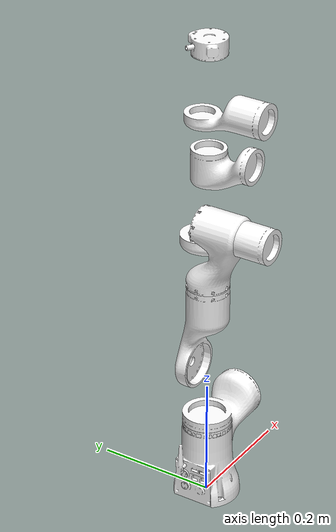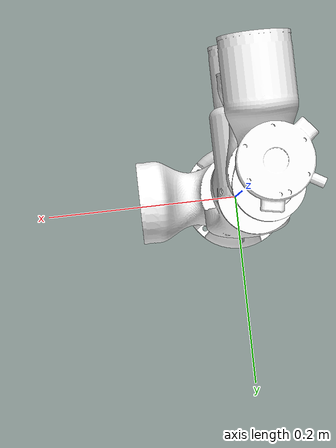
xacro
<robot name="rm_75" xmlns:xacro="http://www.ros.org/wiki/xacro">
<xacro:include filename="$(find rm_75_description)/urdf/rm_75.transmission.xacro"/>
<xacro:include filename="$(find rm_75_description)/urdf/rm_75.gazebo.xacro"/>
<!-- Inertial matrix -->
<xacro:macro name="inertial_matrix" params="mass">
<inertial>
    <mass value="${mass}" />
    <inertia ixx="1.0" ixy="0.0" ixz="0.0" iyy="0.5" iyz="0.0" izz="1.0" />
</inertial>
</xacro:macro>
 <xacro:macro name="Box_inertial_matrix" params="m l w h">
       <inertial>
               <mass value="${m}" />
               <inertia ixx="${m*(h*h + l*l)/12}" ixy = "0" ixz = "0"
                   iyy="${m*(w*w + l*l)/12}" iyz= "0"
                   izz="${m*(w*w + h*h)/12}" />
       </inertial>
  </xacro:macro>

  <link
    name="base_link">
    <inertial>
      <origin
        xyz="-0.00036413 0.00018052 0.052375"
        rpy="0 0 0" />
      <mass
        value="0.31318" />
      <inertia
        ixx="0.00073728"
        ixy="1.5275E-06"
        ixz="1.7514E-05"
        iyy="0.00072364"
        iyz="8.0836E-07"
        izz="0.00048703" />
    </inertial>
    <visual>
      <origin
        xyz="0 0 0"
        rpy="0 0 0" />
      <geometry>
        <mesh
          filename="package://rm_75_description/meshes/base_link.STL" />
      </geometry>
      <material
        name="">
        <color
          rgba="1 1 1 1" />
      </material>
    </visual>
    <collision>
      <origin
        xyz="0 0 0"
        rpy="0 0 0" />
      <geometry>
        <mesh
          filename="package://rm_75_description/meshes/base_link.STL" />
      </geometry>
    </collision>
  </link>
  <link
    name="Link1">
    <inertial>
      <origin
        xyz="-1.7986E-05 -0.0216 0.071926"
        rpy="0 0 0" />
      <mass
        value="0.20084" />
      <inertia
        ixx="0.00053114"
        ixy="-4.3278E-07"
        ixz="1.0479E-06"
        iyy="0.00049744"
        iyz="0.00010625"
        izz="0.0002821" />
    </inertial>
    <visual>
      <origin
        xyz="0 0 0"
        rpy="0 0 0" />
      <geometry>
        <mesh
          filename="package://rm_75_description/meshes/Link1.STL" />
      </geometry>
      <material
        name="">
        <color
          rgba="1 1 1 1" />
      </material>
    </visual>
    <collision>
      <origin
        xyz="0 0 0"
        rpy="0 0 0" />
      <geometry>
        <mesh
          filename="package://rm_75_description/meshes/Link1.STL" />
      </geometry>
    </collision>
  </link>
  <joint
    name="joint1"
    type="revolute">
    <origin
      xyz="-0.00019414 -0.0001 0.138"
      rpy="0 0 0" />
    <parent
      link="base_link" />
    <child
      link="Link1" />
    <axis
      xyz="0 0 1" />
    <limit
      lower="-3.14"
      upper="3.14"
      effort="300"
      velocity="3.14" />
    <dynamics
      damping="50"
      friction="1" />
  </joint>
  <link
    name="Link2">
    <inertial>
      <origin
        xyz="0.06408 -9.195E-07 0.0021525"
        rpy="0 0 0" />
      <mass
        value="0.18101" />
      <inertia
        ixx="0.00017127"
        ixy="9.5334E-09"
        ixz="-0.00011909"
        iyy="0.00056507"
        iyz="7.4924E-10"
        izz="0.00056467" />
    </inertial>
    <visual>
      <origin
        xyz="0 0 0"
        rpy="0 0 0" />
      <geometry>
        <mesh
          filename="package://rm_75_description/meshes/Link2.STL" />
      </geometry>
      <material
        name="">
        <color
          rgba="1 1 1 1" />
      </material>
    </visual>
    <collision>
      <origin
        xyz="0 0 0"
        rpy="0 0 0" />
      <geometry>
        <mesh
          filename="package://rm_75_description/meshes/Link2.STL" />
      </geometry>
    </collision>
  </link>
  <joint
    name="joint2"
    type="revolute">
    <origin
      xyz="0 0.016171 0.1012"
      rpy="1.5708 -1.5708 0" />
    <parent
      link="Link1" />
    <child
      link="Link2" />
    <axis
      xyz="0 0 -1" />
    <limit
      lower="-2.269"
      upper="2.269"
      effort="300"
      velocity="3.14" />
    <dynamics
      damping="50"
      friction="1" />
  </joint>
  <link
    name="Link3">
    <inertial>
      <origin
        xyz="-9.2535E-05 0.022952 0.06984"
        rpy="0 0 0" />
      <mass
        value="0.14029" />
      <inertia
        ixx="0.00033103"
        ixy="-1.498E-07"
        ixz="-5.897E-07"
        iyy="0.00030383"
        iyz="-6.9702E-05"
        izz="0.00015901" />
    </inertial>
    <visual>
      <origin
        xyz="0 0 0"
        rpy="0 0 0" />
      <geometry>
        <mesh
          filename="package://rm_75_description/meshes/Link3.STL" />
      </geometry>
      <material
        name="">
        <color
          rgba="1 1 1 1" />
      </material>
    </visual>
    <collision>
      <origin
        xyz="0 0 0"
        rpy="0 0 0" />
      <geometry>
        <mesh
          filename="package://rm_75_description/meshes/Link3.STL" />
      </geometry>
    </collision>
  </link>
  <joint
    name="joint3"
    type="revolute">
    <origin
      xyz="0.1525 0 0.016461"
      rpy="1.5708 0 1.5708" />
    <parent
      link="Link2" />
    <child
      link="Link3" />
    <axis
      xyz="0 0 1" />
    <limit
      lower="-3.14"
      upper="3.14"
      effort="300"
      velocity="3.14" />
    <dynamics
      damping="50"
      friction="1" />
  </joint>
  <link
    name="Link4">
    <inertial>
      <origin
        xyz="-3.5669E-06 -0.051287 2.1095E-05"
        rpy="0 0 0" />
      <mass
        value="0.10277" />
      <inertia
        ixx="0.00023647"
        ixy="-2.8544E-09"
        ixz="-4.0488E-10"
        iyy="7.3686E-05"
        iyz="5.2218E-05"
        izz="0.00023387" />
    </inertial>
    <visual>
      <origin
        xyz="0 0 0"
        rpy="0 0 0" />
      <geometry>
        <mesh
          filename="package://rm_75_description/meshes/Link4.STL" />
      </geometry>
      <material
        name="">
        <color
          rgba="1 1 1 1" />
      </material>
    </visual>
    <collision>
      <origin
        xyz="0 0 0"
        rpy="0 0 0" />
      <geometry>
        <mesh
          filename="package://rm_75_description/meshes/Link4.STL" />
      </geometry>
    </collision>
  </link>
  <joint
    name="joint4"
    type="revolute">
    <origin
      xyz="0 -0.012936 0.10326"
      rpy="-1.5708 -1.2512E-12 -4.4936E-28" />
    <parent
      link="Link3" />
    <child
      link="Link4" />
    <axis
      xyz="0 0 -1" />
    <limit
      lower="-2.355"
      upper="2.355"
      effort="300"
      velocity="3.14" />
    <dynamics
      damping="50"
      friction="1" />
  </joint>
  <link
    name="Link5">
    <inertial>
      <origin
        xyz="6.7914E-05 0.017207 0.05505"
        rpy="0 0 0" />
      <mass
        value="0.075153" />
      <inertia
        ixx="0.00011497"
        ixy="1.5504E-08"
        ixz="2.0317E-07"
        iyy="0.00010599"
        iyz="-2.14E-05"
        izz="5.7124E-05" />
    </inertial>
    <visual>
      <origin
        xyz="0 0 0"
        rpy="0 0 0" />
      <geometry>
        <mesh
          filename="package://rm_75_description/meshes/Link5.STL" />
      </geometry>
      <material
        name="">
        <color
          rgba="1 1 1 1" />
      </material>
    </visual>
    <collision>
      <origin
        xyz="0 0 0"
        rpy="0 0 0" />
      <geometry>
        <mesh
          filename="package://rm_75_description/meshes/Link5.STL" />
      </geometry>
    </collision>
  </link>
  <joint
    name="joint5"
    type="revolute">
    <origin
      xyz="0 -0.128 0.013234"
      rpy="1.5708 0 1.2512E-12" />
    <parent
      link="Link4" />
    <child
      link="Link5" />
    <axis
      xyz="0 0 1" />
    <limit
      lower="-3.14"
      upper="3.14"
      effort="300"
      velocity="3.14" />
    <dynamics
      damping="50"
      friction="1" />
  </joint>
  <link
    name="Link6">
    <inertial>
      <origin
        xyz="-2.1459E-06 -0.04912 0.0023694"
        rpy="0 0 0" />
      <mass
        value="0.071658" />
      <inertia
        ixx="0.00013538"
        ixy="2.1752E-09"
        ixz="8.5562E-10"
        iyy="4.6775E-05"
        iyz="2.9237E-05"
        izz="0.00013207" />
    </inertial>
    <visual>
      <origin
        xyz="0 0 0"
        rpy="0 0 0" />
      <geometry>
        <mesh
          filename="package://rm_75_description/meshes/Link6.STL" />
      </geometry>
      <material
        name="">
        <color
          rgba="1 1 1 1" />
      </material>
    </visual>
    <collision>
      <origin
        xyz="0 0 0"
        rpy="0 0 0" />
      <geometry>
        <mesh
          filename="package://rm_75_description/meshes/Link6.STL" />
      </geometry>
    </collision>
  </link>
  <joint
    name="joint6"
    type="revolute">
    <origin
      xyz="0 -0.0121 0.0815"
      rpy="-1.5708 2.359E-12 5.6484E-28" />
    <parent
      link="Link5" />
    <child
      link="Link6" />
    <axis
      xyz="0 0 -1" />
    <limit
      lower="-2.233"
      upper="2.233"
      effort="300"
      velocity="3.14" />
    <dynamics
      damping="50"
      friction="1" />
  </joint>
  <link
    name="Link7">
    <inertial>
      <origin
        xyz="0.00061092 0.00022624 0.021716"
        rpy="0 0 0" />
      <mass
        value="0.032148" />
      <inertia
        ixx="1.2E-05"
        ixy="-2.8237E-08"
        ixz="9.4221E-08"
        iyy="1.1551E-05"
        iyz="-4.2363E-08"
        izz="1.7726E-05" />
    </inertial>
    <visual>
      <origin
        xyz="0 0 0"
        rpy="0 0 0" />
      <geometry>
        <mesh
          filename="package://rm_75_description/meshes/Link7.STL" />
      </geometry>
      <material
        name="">
        <color
          rgba="1 1 1 1" />
      </material>
    </visual>
    <collision>
      <origin
        xyz="0 0 0"
        rpy="0 0 0" />
      <geometry>
        <mesh
          filename="package://rm_75_description/meshes/Link7.STL" />
      </geometry>
    </collision>
  </link>
  <joint
    name="joint7"
    type="revolute">
    <origin
      xyz="0 -0.115 0.012437"
      rpy="1.5708 0 -2.359E-12" />
    <parent
      link="Link6" />
    <child
      link="Link7" />
    <axis
      xyz="0 0 1" />
    <limit
      lower="-6.28"
      upper="6.28"
      effort="300"
      velocity="1" />
    <dynamics
      damping="50"
      friction="1" />
  </joint>

  <link name="tool_link">
  </link>
  <joint name="tool_joint" type="fixed">
    <origin xyz="0 0 0.03103" rpy="0 0 3.1416" />
    <parent link="Link7" />
    <child link="tool_link" />
  </joint>

    <!-- Transmissions for ROS Control -->
    <xacro:macro name="transmission_block" params="joint_name">
        <transmission name="tran1">
            <type>transmission_interface/SimpleTransmission</type>
            <joint name="${joint_name}">
                <hardwareInterface>hardware_interface/PositionJointInterface</hardwareInterface>
            </joint>
            <actuator name="motor1">
                <hardwareInterface>hardware_interface/PositionJointInterface</hardwareInterface>
                <mechanicalReduction>1</mechanicalReduction>
            </actuator>
        </transmission>
    </xacro:macro>

    <xacro:transmission_block joint_name="joint1"/>
    <xacro:transmission_block joint_name="joint2"/>
    <xacro:transmission_block joint_name="joint3"/>
    <xacro:transmission_block joint_name="joint4"/>
    <xacro:transmission_block joint_name="joint5"/>
    <xacro:transmission_block joint_name="joint6"/>
    <xacro:transmission_block joint_name="joint7"/>

    <!-- ros_control plugin -->
    <gazebo>
        <plugin name="gazebo_ros_control" filename="libgazebo_ros_control.so">
            <robotNamespace>/arm</robotNamespace>
            <robotSimType>gazebo_ros_control/DefaultRobotHWSim</robotSimType>
            <legacyModeNS>true</legacyModeNS>
        </plugin>
    </gazebo>
</robot>
